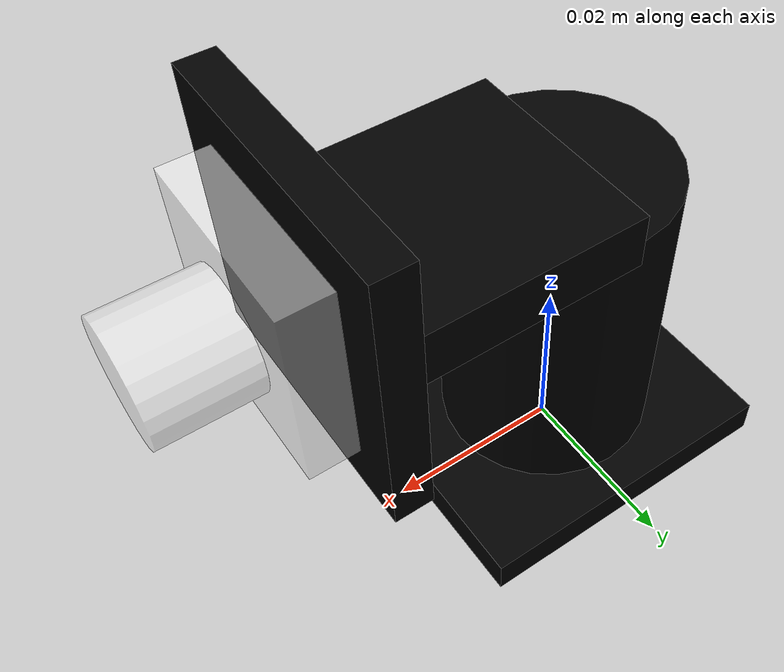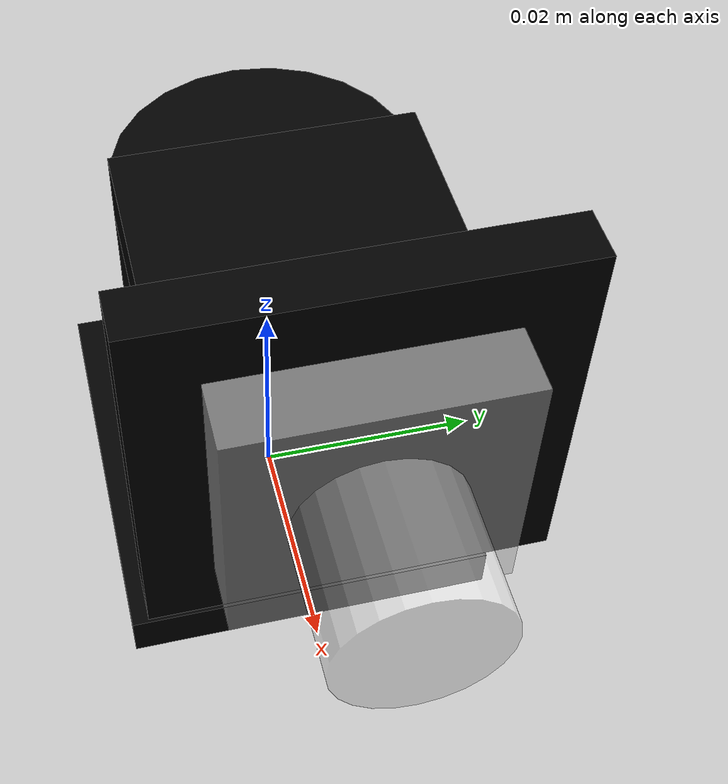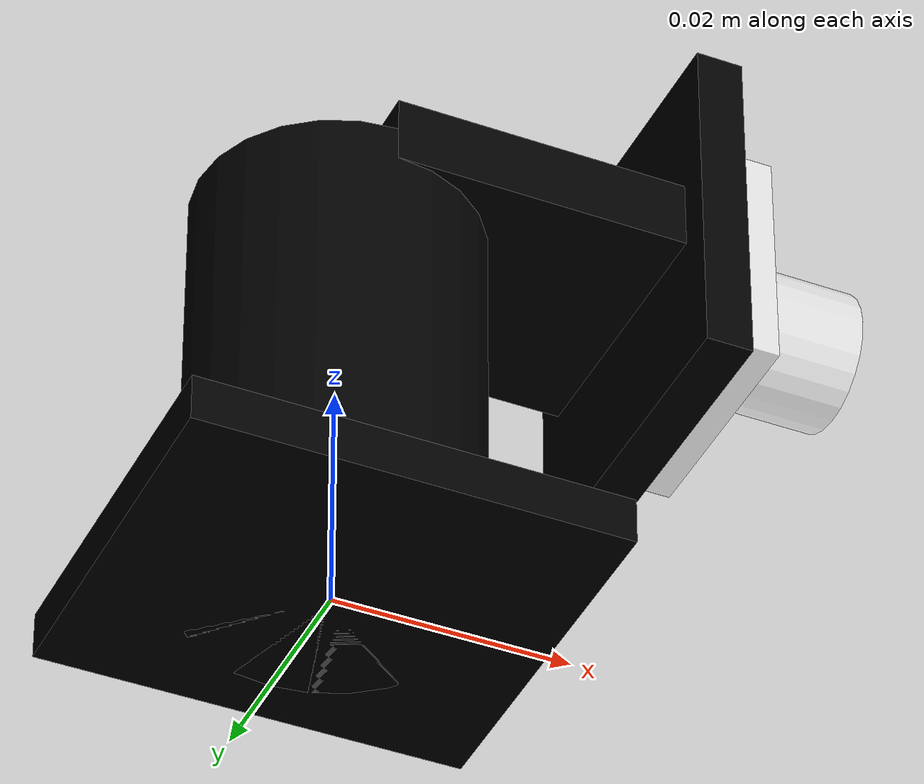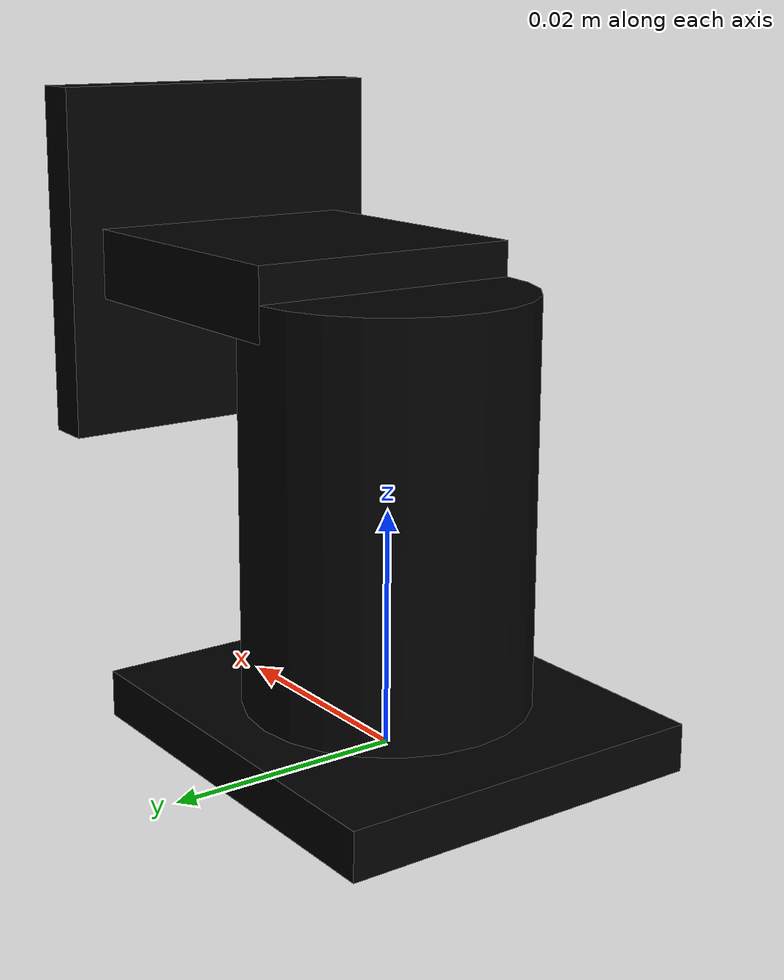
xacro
<?xml version="1.0"?>
<robot xmlns:xacro="http://www.ros.org/wiki/xacro">

    <!-- dimensions of the pan tilt cam -->
    <xacro:property name="base_length" value="0.036" />
    <xacro:property name="base_width" value="0.032" />
    <xacro:property name="base_height" value="0.004" />
    <xacro:property name="v_armlength" value="0.038" />
    <xacro:property name="v_armdiameter" value="0.024" />
    <xacro:property name="h_armlength" value="0.027" />
    <xacro:property name="h_armheight" value="0.006" />
    <xacro:property name="cam_plate_length" value="0.004" />
    <xacro:property name="cam_plate_width" value="0.030" />
    <xacro:property name="cam_plate_height" value="0.030" />

    <material name="pan-tilt-arm">
        <color rgba="0.0 0.0 0.0 1.0" />
    </material>

    <link name="pan_tilt_cam_base">
        <visual>
            <origin xyz="0.0 0.0 ${base_height/2}" />
            <geometry>
                <box size="${base_length} ${base_width} ${base_height}" />
            </geometry>
            <material name="pan-tilt-arm" />
        </visual>
        <collision>
            <origin xyz="0.0 0.0 ${base_height/2}" />
            <geometry>
                <box size="${base_length} ${base_width} ${base_height}" />
            </geometry>
        </collision>
        <xacro:inertial_box mass="0.002" x="${base_length}" y="${base_width}" z="${base_height}">
            <origin xyz="0 0 0" rpy="0 0 0"/>
        </xacro:inertial_box>
    </link>

    <gazebo reference="pan_tilt_cam_base">
        <material>Gazebo/Black</material>
    </gazebo>

    <joint name="vertical_arm_joint" type="revolute">
        <parent link="pan_tilt_cam_base" />
        <child link="vertical_arm" />
        <origin rpy="0.0 0.0 0.0" xyz="0.0 0.0 ${v_armlength/2}" />
        <axis rpy="0.0 0.0 0.0" xyz="0.0 0.0 -1" />
        <limit lower="${-pi/3}" upper="${pi/3}" velocity="100" effort="100" />
        <dynamics damping="1.0" friction="1.0" />
    </joint>

    <link name="vertical_arm">
        <visual>
            <geometry>
                <cylinder radius="${v_armdiameter/2}" length="${v_armlength}" />
            </geometry>
            <material name="pan-tilt-arm" />
        </visual>
        <collision>
            <geometry>
                <cylinder radius="${v_armdiameter/2}" length="${v_armlength}" />
            </geometry>
        </collision>
        <xacro:inertial_cylinder mass="0.001" length="${v_armlength}" radius="${v_armdiameter/2}">
            <origin xyz="0 0 0" rpy="0 0 0"/>
        </xacro:inertial_cylinder>
    </link>

    <gazebo reference="vertical_arm">
        <material>Gazebo/Black</material>
    </gazebo>

    <joint name="horizontal_arm_joint" type="fixed">
        <parent link="vertical_arm" />
        <child link="horizontal_arm" />
        <origin rpy="0.0 0.0 0.0" xyz="${h_armlength/2} 0.0 ${v_armlength/2}" />
    </joint>

    <link name="horizontal_arm">
        <visual>
            <origin xyz="0.0 0.0 0.0" />
            <geometry>
                <box size="${h_armlength} ${v_armdiameter} ${h_armheight}" />
            </geometry>
            <material name="pan-tilt-arm" />
        </visual>
        <collision>
            <origin xyz="0.0 0.0 ${base_height/2}" />
            <geometry>
                <box size="${h_armlength} ${v_armdiameter} ${h_armheight}" />
            </geometry>
        </collision>
        <xacro:inertial_box mass="0.002" x="${h_armlength}" y="${v_armdiameter}" z="${h_armheight}">
            <origin xyz="0 0 0" rpy="0 0 0"/>
        </xacro:inertial_box>
    </link>

    <gazebo reference="horizontal_arm">
        <material>Gazebo/Black</material>
    </gazebo>

    <joint name="cam_plate_joint" type="revolute">
        <parent link="horizontal_arm" />
        <child link="cam_plate" />
        <origin rpy="0.0 0.0 0.0" xyz="${h_armlength/2} 0.0 0.0" />
        <axis rpy="0.0 0.0 0.0" xyz="0.0 -1 0.0" />
        <limit lower="${-pi/12}" upper="${5*pi/12}" velocity="100" effort="100" />
        <dynamics damping="1.0" friction="1.0" />
    </joint>

    <link name="cam_plate">
        <visual>
            <origin xyz="0.0 0.0 0.0" />
            <geometry>
                <box size="${cam_plate_length} ${cam_plate_width} ${cam_plate_height}" />
            </geometry>
            <material name="pan-tilt-arm" />
        </visual>
        <collision>
            <origin xyz="0.0 0.0 0.0" />
            <geometry>
                <box size="${cam_plate_length} ${cam_plate_width} ${cam_plate_height}" />
            </geometry>
        </collision>
        <xacro:inertial_box mass="0.001" x="${cam_plate_length}" y="${cam_plate_width}" z="${cam_plate_height}">
            <origin xyz="0 0 0" rpy="0 0 0"/>
        </xacro:inertial_box>
    </link>

    <gazebo reference="cam_plate">
        <material>Gazebo/Black</material>
    </gazebo>

    <joint name="camera_joint" type="fixed">
        <parent link="cam_plate" />
        <child link="camera" />
        <origin rpy="0.0 0.0 0.0" xyz="${cam_plate_length/2} 0.0 0.0" />
    </joint>
    <xacro:include filename="camera.xacro" />

</robot>

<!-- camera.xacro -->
<robot xmlns:xacro="http://www.ros.org/wiki/xacro">

    <!-- dimensions of the camera -->
    <xacro:property name="cam_length" value="0.005" />
    <xacro:property name="cam_width" value="0.02" />
    <xacro:property name="cam_height" value="0.02" />
    <xacro:property name="lense_length" value="0.01" />
    <xacro:property name="lense_diameter" value="0.012" />

    <material name="cam">
        <color rgba="1.0 1.0 1.0 0.5" />
    </material>

    <link name="camera">
        <visual>
            <origin xyz="${cam_length/2} 0 0" rpy="0 0 0"/>
            <geometry>
                <box size="${cam_length} ${cam_width} ${cam_height}" />
            </geometry>
            <material name="cam" />
        </visual>
        <visual>
            <origin xyz="${lense_length/2+cam_length} 0 0" rpy="0 ${pi/2} 0"/>
            <geometry>
                <cylinder length="${lense_length}" radius="${lense_diameter/2}" />
            </geometry>
            <material name="cam" />
        </visual>
        <collision>
            <origin xyz="${cam_length/2+0.001} 0 0" rpy="0 0 0"/>
            <geometry>
                <box size="${cam_length/2+0.002} ${cam_width} ${cam_height}" />
            </geometry>
        </collision>
        <xacro:inertial_box mass="0.005" x="${cam_length/2+0.002}" y="${cam_width}" z="${cam_height}">
            <origin xyz="0.0 0 0" rpy="0 0 0"/>
        </xacro:inertial_box>
    </link>

    <gazebo reference="camera">
        <material>Gazebo/Orange</material>
    </gazebo>

</robot>
